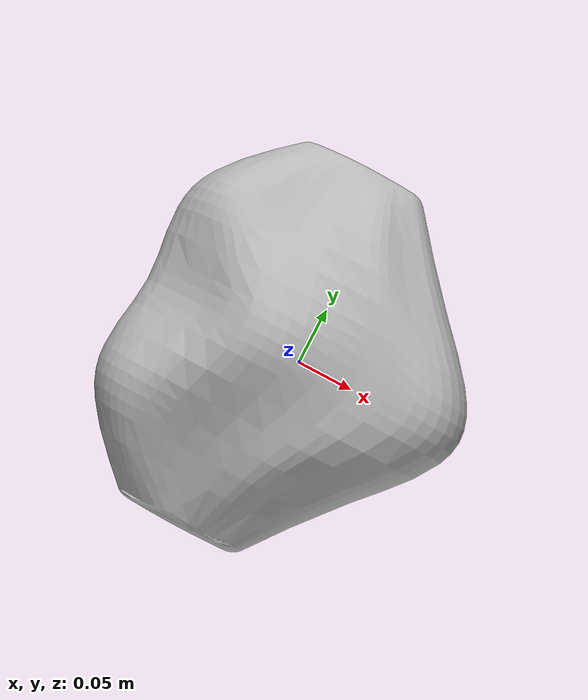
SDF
<?xml version="1.0" ?>
<sdf version="1.4">
  <model name="rock">
    <static>true</static>
    <link name="link">
      <inertial>
        <pose>0.3 0.3 -0.17 3.1416 0 0</pose>
        <mass>2</mass>
        <inertia>
          <ixx>0.01</ixx>
          <ixy>0</ixy>
          <ixz>0</ixz>
          <iyy>0.01</iyy>
          <iyz>0</iyz>
          <izz>0.01</izz>
        </inertia>
      </inertial>
      <collision name="collision">
        <pose>0.3 0.3 -0.17 3.1416 0 0</pose>
        <geometry>
          <mesh>
            <uri>model://rock/model.dae</uri>
          </mesh>
        </geometry>
      </collision>
      <visual name="visual">
        <pose>0.3 0.3 -0.17 3.1416 0 0</pose>
        <geometry>
          <mesh>
            <uri>model://rock/model.dae</uri>
          </mesh>
        </geometry>
      </visual>
    </link>
  </model>
</sdf>
